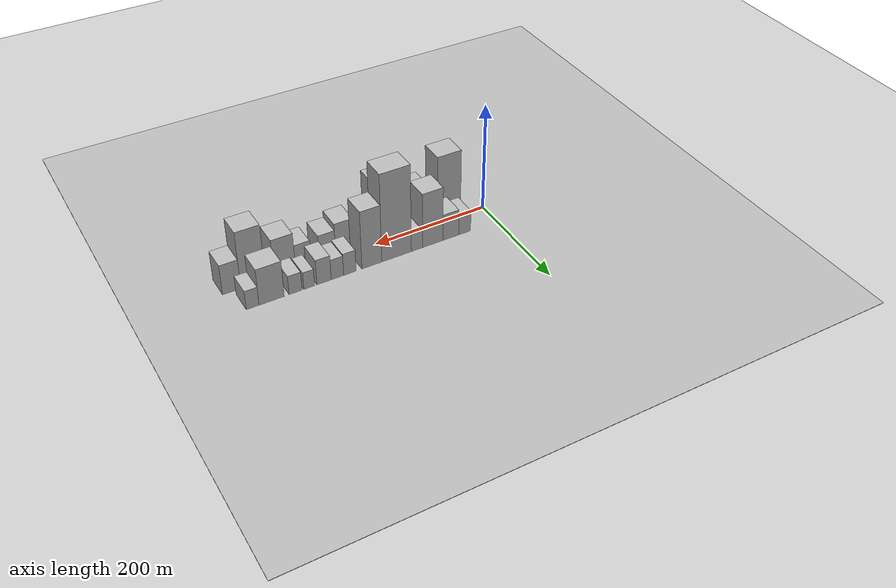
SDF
<?xml version="1.0" encoding="utf-8"?>

<sdf version="1.6">

   <world name="default">

      <gui fullscreen="0">

         <camera name="user_camera">

            <pose>-15 0 4.57585 0 0 0</pose>

            <view_controller>orbit</view_controller>

         </camera>

      </gui>

      <scene>

         <sky>

           <clouds>

             <speed>12</speed>

           </clouds>

         </sky>

         <ambient>0.4 0.4 0.4 1</ambient>

         <background>0.7 0.7 0.7 1</background>

         <shadows>1</shadows>

      </scene>

      <gravity>0 0 -9.8066</gravity>

      <magnetic_field>6e-06 2.3e-05 -4.2e-05</magnetic_field>

      <physics default="0" name="default_physics" type="ode">

         <ode>

            <solver>

               <type>quick</type>

               <iters>10</iters>

               <sor>1.0</sor>

               <use_dynamic_moi_rescaling>0</use_dynamic_moi_rescaling>

            </solver>

            <constraints>

               <cfm>0</cfm>

               <erp>0.2</erp>

               <contact_max_correcting_vel>100</contact_max_correcting_vel>

               <contact_surface_layer>0.001</contact_surface_layer>

            </constraints>

         </ode>

         <max_step_size>0.004</max_step_size>

         <real_time_factor>1</real_time_factor>

         <real_time_update_rate>250</real_time_update_rate>

      </physics>

      <light name="sun" type="directional">

         <cast_shadows>1</cast_shadows>

         <pose>0 0 10 0 0 0</pose>

         <diffuse>0.8 0.8 0.8 1</diffuse>

         <specular>0.2 0.2 0.2 1</specular>

         <attenuation>

            <range>1000</range>

            <constant>0.9</constant>

            <linear>0.01</linear>

            <quadratic>0.001</quadratic>

         </attenuation>

         <direction>-0.5 0.1 -0.9</direction>

      </light>

      <include>

         <name>ground_plane_1</name>

         <uri>model://HANNAS_ground_plane</uri>

         <pose>0 0 0  0 0 0</pose>

      </include>

      <include>

         <name>ground_plane_2</name>

         <uri>model://HANNAS_ground_plane</uri>

         <pose>100 0 0  0 0 0</pose>

      </include>

      <model name="building_1">

         <static>1</static>

         <pose frame="">61.0747 24.5000 0 0.000000 0.000000 1.570796</pose>

         <link name="link">

            <pose frame="">0 0 21.00 0 0 0</pose>

            <collision name="collision">

               <geometry>

                  <box>

                     <size>40.0000 22.1494 42.0000</size>

                  </box>

               </geometry>

               <max_contacts>10</max_contacts>

               <surface>

                  <contact>

                     <ode/>

                  </contact>

                  <bounce/>

                  <friction>

                     <torsional>

                        <ode/>

                     </torsional>

                     <ode/>

                  </friction>

               </surface>

            </collision>

            <visual name="visual">

               <cast_shadows>0</cast_shadows>

               <geometry>

                  <box>

                     <size>40.0000 22.1494 42.0000</size>

                  </box>

               </geometry>

               <material>

                  <script>

                     <uri>model://HANNAS_wall/materials/scripts</uri>

                     <uri>model://HANNAS_wall/materials/textures</uri>

                     <name>vrc/HANNAS_wall</name>

                  </script>

               </material>

            </visual>

            <self_collide>0</self_collide>

            <enable_wind>0</enable_wind>

            <kinematic>0</kinematic>

         </link>

      </model>

      <model name="building_2">

         <static>1</static>

         <pose frame="">86.7216 24.5000 0 0.000000 0.000000 1.570796</pose>

         <link name="link">

            <pose frame="">0 0 25.50 0 0 0</pose>

            <collision name="collision">

               <geometry>

                  <box>

                     <size>40.0000 29.1444 51.0000</size>

                  </box>

               </geometry>

               <max_contacts>10</max_contacts>

               <surface>

                  <contact>

                     <ode/>

                  </contact>

                  <bounce/>

                  <friction>

                     <torsional>

                        <ode/>

                     </torsional>

                     <ode/>

                  </friction>

               </surface>

            </collision>

            <visual name="visual">

               <cast_shadows>0</cast_shadows>

               <geometry>

                  <box>

                     <size>40.0000 29.1444 51.0000</size>

                  </box>

               </geometry>

               <material>

                  <script>

                     <uri>model://HANNAS_wall/materials/scripts</uri>

                     <uri>model://HANNAS_wall/materials/textures</uri>

                     <name>vrc/HANNAS_wall</name>

                  </script>

               </material>

            </visual>

            <self_collide>0</self_collide>

            <enable_wind>0</enable_wind>

            <kinematic>0</kinematic>

         </link>

      </model>

      <model name="building_3">

         <static>1</static>

         <pose frame="">120.1111 24.5000 0 0.000000 0.000000 1.570796</pose>

         <link name="link">

            <pose frame="">0 0 52.50 0 0 0</pose>

            <collision name="collision">

               <geometry>

                  <box>

                     <size>40.0000 37.6346 105.0000</size>

                  </box>

               </geometry>

               <max_contacts>10</max_contacts>

               <surface>

                  <contact>

                     <ode/>

                  </contact>

                  <bounce/>

                  <friction>

                     <torsional>

                        <ode/>

                     </torsional>

                     <ode/>

                  </friction>

               </surface>

            </collision>

            <visual name="visual">

               <cast_shadows>0</cast_shadows>

               <geometry>

                  <box>

                     <size>40.0000 37.6346 105.0000</size>

                  </box>

               </geometry>

               <material>

                  <script>

                     <uri>model://HANNAS_wall/materials/scripts</uri>

                     <uri>model://HANNAS_wall/materials/textures</uri>

                     <name>vrc/HANNAS_wall</name>

                  </script>

               </material>

            </visual>

            <self_collide>0</self_collide>

            <enable_wind>0</enable_wind>

            <kinematic>0</kinematic>

         </link>

      </model>

      <model name="building_4">

         <static>1</static>

         <pose frame="">149.0038 24.5000 0 0.000000 0.000000 1.570796</pose>

         <link name="link">

            <pose frame="">0 0 18.00 0 0 0</pose>

            <collision name="collision">

               <geometry>

                  <box>

                     <size>40.0000 20.1508 36.0000</size>

                  </box>

               </geometry>

               <max_contacts>10</max_contacts>

               <surface>

                  <contact>

                     <ode/>

                  </contact>

                  <bounce/>

                  <friction>

                     <torsional>

                        <ode/>

                     </torsional>

                     <ode/>

                  </friction>

               </surface>

            </collision>

            <visual name="visual">

               <cast_shadows>0</cast_shadows>

               <geometry>

                  <box>

                     <size>40.0000 20.1508 36.0000</size>

                  </box>

               </geometry>

               <material>

                  <script>

                     <uri>model://HANNAS_wall/materials/scripts</uri>

                     <uri>model://HANNAS_wall/materials/textures</uri>

                     <name>vrc/HANNAS_wall</name>

                  </script>

               </material>

            </visual>

            <self_collide>0</self_collide>

            <enable_wind>0</enable_wind>

            <kinematic>0</kinematic>

         </link>

      </model>

      <model name="building_5">

         <static>1</static>

         <pose frame="">185.5101 24.5000 0 0.000000 0.000000 1.570796</pose>

         <link name="link">

            <pose frame="">0 0 84.00 0 0 0</pose>

            <collision name="collision">

               <geometry>

                  <box>

                     <size>40.0000 52.8618 168.0000</size>

                  </box>

               </geometry>

               <max_contacts>10</max_contacts>

               <surface>

                  <contact>

                     <ode/>

                  </contact>

                  <bounce/>

                  <friction>

                     <torsional>

                        <ode/>

                     </torsional>

                     <ode/>

                  </friction>

               </surface>

            </collision>

            <visual name="visual">

               <cast_shadows>0</cast_shadows>

               <geometry>

                  <box>

                     <size>40.0000 52.8618 168.0000</size>

                  </box>

               </geometry>

               <material>

                  <script>

                     <uri>model://HANNAS_wall/materials/scripts</uri>

                     <uri>model://HANNAS_wall/materials/textures</uri>

                     <name>vrc/HANNAS_wall</name>

                  </script>

               </material>

            </visual>

            <self_collide>0</self_collide>

            <enable_wind>0</enable_wind>

            <kinematic>0</kinematic>

         </link>

      </model>

      <model name="building_6">

         <static>1</static>

         <pose frame="">229.3432 24.5000 0 0.000000 0.000000 1.570796</pose>

         <link name="link">

            <pose frame="">0 0 55.50 0 0 0</pose>

            <collision name="collision">

               <geometry>

                  <box>

                     <size>40.0000 34.8044 111.0000</size>

                  </box>

               </geometry>

               <max_contacts>10</max_contacts>

               <surface>

                  <contact>

                     <ode/>

                  </contact>

                  <bounce/>

                  <friction>

                     <torsional>

                        <ode/>

                     </torsional>

                     <ode/>

                  </friction>

               </surface>

            </collision>

            <visual name="visual">

               <cast_shadows>0</cast_shadows>

               <geometry>

                  <box>

                     <size>40.0000 34.8044 111.0000</size>

                  </box>

               </geometry>

               <material>

                  <script>

                     <uri>model://HANNAS_wall/materials/scripts</uri>

                     <uri>model://HANNAS_wall/materials/textures</uri>

                     <name>vrc/HANNAS_wall</name>

                  </script>

               </material>

            </visual>

            <self_collide>0</self_collide>

            <enable_wind>0</enable_wind>

            <kinematic>0</kinematic>

         </link>

      </model>

      <model name="building_7">

         <static>1</static>

         <pose frame="">267.5260 24.5000 0 0.000000 0.000000 1.570796</pose>

         <link name="link">

            <pose frame="">0 0 21.00 0 0 0</pose>

            <collision name="collision">

               <geometry>

                  <box>

                     <size>40.0000 21.5611 42.0000</size>

                  </box>

               </geometry>

               <max_contacts>10</max_contacts>

               <surface>

                  <contact>

                     <ode/>

                  </contact>

                  <bounce/>

                  <friction>

                     <torsional>

                        <ode/>

                     </torsional>

                     <ode/>

                  </friction>

               </surface>

            </collision>

            <visual name="visual">

               <cast_shadows>0</cast_shadows>

               <geometry>

                  <box>

                     <size>40.0000 21.5611 42.0000</size>

                  </box>

               </geometry>

               <material>

                  <script>

                     <uri>model://HANNAS_wall/materials/scripts</uri>

                     <uri>model://HANNAS_wall/materials/textures</uri>

                     <name>vrc/HANNAS_wall</name>

                  </script>

               </material>

            </visual>

            <self_collide>0</self_collide>

            <enable_wind>0</enable_wind>

            <kinematic>0</kinematic>

         </link>

      </model>

      <model name="building_8">

         <static>1</static>

         <pose frame="">288.9002 24.5000 0 0.000000 0.000000 1.570796</pose>

         <link name="link">

            <pose frame="">0 0 19.50 0 0 0</pose>

            <collision name="collision">

               <geometry>

                  <box>

                     <size>40.0000 21.1873 39.0000</size>

                  </box>

               </geometry>

               <max_contacts>10</max_contacts>

               <surface>

                  <contact>

                     <ode/>

                  </contact>

                  <bounce/>

                  <friction>

                     <torsional>

                        <ode/>

                     </torsional>

                     <ode/>

                  </friction>

               </surface>

            </collision>

            <visual name="visual">

               <cast_shadows>0</cast_shadows>

               <geometry>

                  <box>

                     <size>40.0000 21.1873 39.0000</size>

                  </box>

               </geometry>

               <material>

                  <script>

                     <uri>model://HANNAS_wall/materials/scripts</uri>

                     <uri>model://HANNAS_wall/materials/textures</uri>

                     <name>vrc/HANNAS_wall</name>

                  </script>

               </material>

            </visual>

            <self_collide>0</self_collide>

            <enable_wind>0</enable_wind>

            <kinematic>0</kinematic>

         </link>

      </model>

      <model name="building_9">

         <static>1</static>

         <pose frame="">311.6176 24.5000 0 0.000000 0.000000 1.570796</pose>

         <link name="link">

            <pose frame="">0 0 24.00 0 0 0</pose>

            <collision name="collision">

               <geometry>

                  <box>

                     <size>40.0000 24.2476 48.0000</size>

                  </box>

               </geometry>

               <max_contacts>10</max_contacts>

               <surface>

                  <contact>

                     <ode/>

                  </contact>

                  <bounce/>

                  <friction>

                     <torsional>

                        <ode/>

                     </torsional>

                     <ode/>

                  </friction>

               </surface>

            </collision>

            <visual name="visual">

               <cast_shadows>0</cast_shadows>

               <geometry>

                  <box>

                     <size>40.0000 24.2476 48.0000</size>

                  </box>

               </geometry>

               <material>

                  <script>

                     <uri>model://HANNAS_wall/materials/scripts</uri>

                     <uri>model://HANNAS_wall/materials/textures</uri>

                     <name>vrc/HANNAS_wall</name>

                  </script>

               </material>

            </visual>

            <self_collide>0</self_collide>

            <enable_wind>0</enable_wind>

            <kinematic>0</kinematic>

         </link>

      </model>

      <model name="building_10">

         <static>1</static>

         <pose frame="">336.6975 24.5000 0 0.000000 0.000000 1.570796</pose>

         <link name="link">

            <pose frame="">0 0 16.50 0 0 0</pose>

            <collision name="collision">

               <geometry>

                  <box>

                     <size>40.0000 17.9122 33.0000</size>

                  </box>

               </geometry>

               <max_contacts>10</max_contacts>

               <surface>

                  <contact>

                     <ode/>

                  </contact>

                  <bounce/>

                  <friction>

                     <torsional>

                        <ode/>

                     </torsional>

                     <ode/>

                  </friction>

               </surface>

            </collision>

            <visual name="visual">

               <cast_shadows>0</cast_shadows>

               <geometry>

                  <box>

                     <size>40.0000 17.9122 33.0000</size>

                  </box>

               </geometry>

               <material>

                  <script>

                     <uri>model://HANNAS_wall/materials/scripts</uri>

                     <uri>model://HANNAS_wall/materials/textures</uri>

                     <name>vrc/HANNAS_wall</name>

                  </script>

               </material>

            </visual>

            <self_collide>0</self_collide>

            <enable_wind>0</enable_wind>

            <kinematic>0</kinematic>

         </link>

      </model>

      <model name="building_11">

         <static>1</static>

         <pose frame="">359.3681 24.5000 0 0.000000 0.000000 1.570796</pose>

         <link name="link">

            <pose frame="">0 0 18.00 0 0 0</pose>

            <collision name="collision">

               <geometry>

                  <box>

                     <size>40.0000 21.4290 36.0000</size>

                  </box>

               </geometry>

               <max_contacts>10</max_contacts>

               <surface>

                  <contact>

                     <ode/>

                  </contact>

                  <bounce/>

                  <friction>

                     <torsional>

                        <ode/>

                     </torsional>

                     <ode/>

                  </friction>

               </surface>

            </collision>

            <visual name="visual">

               <cast_shadows>0</cast_shadows>

               <geometry>

                  <box>

                     <size>40.0000 21.4290 36.0000</size>

                  </box>

               </geometry>

               <material>

                  <script>

                     <uri>model://HANNAS_wall/materials/scripts</uri>

                     <uri>model://HANNAS_wall/materials/textures</uri>

                     <name>vrc/HANNAS_wall</name>

                  </script>

               </material>

            </visual>

            <self_collide>0</self_collide>

            <enable_wind>0</enable_wind>

            <kinematic>0</kinematic>

         </link>

      </model>

      <model name="building_12">

         <static>1</static>

         <pose frame="">398.5924 24.5000 0 0.000000 0.000000 1.570796</pose>

         <link name="link">

            <pose frame="">0 0 34.50 0 0 0</pose>

            <collision name="collision">

               <geometry>

                  <box>

                     <size>40.0000 41.0194 69.0000</size>

                  </box>

               </geometry>

               <max_contacts>10</max_contacts>

               <surface>

                  <contact>

                     <ode/>

                  </contact>

                  <bounce/>

                  <friction>

                     <torsional>

                        <ode/>

                     </torsional>

                     <ode/>

                  </friction>

               </surface>

            </collision>

            <visual name="visual">

               <cast_shadows>0</cast_shadows>

               <geometry>

                  <box>

                     <size>40.0000 41.0194 69.0000</size>

                  </box>

               </geometry>

               <material>

                  <script>

                     <uri>model://HANNAS_wall/materials/scripts</uri>

                     <uri>model://HANNAS_wall/materials/textures</uri>

                     <name>vrc/HANNAS_wall</name>

                  </script>

               </material>

            </visual>

            <self_collide>0</self_collide>

            <enable_wind>0</enable_wind>

            <kinematic>0</kinematic>

         </link>

      </model>

      <model name="building_13">

         <static>1</static>

         <pose frame="">429.3703 24.5000 0 0.000000 0.000000 1.570796</pose>

         <link name="link">

            <pose frame="">0 0 18.00 0 0 0</pose>

            <collision name="collision">

               <geometry>

                  <box>

                     <size>40.0000 20.5363 36.0000</size>

                  </box>

               </geometry>

               <max_contacts>10</max_contacts>

               <surface>

                  <contact>

                     <ode/>

                  </contact>

                  <bounce/>

                  <friction>

                     <torsional>

                        <ode/>

                     </torsional>

                     <ode/>

                  </friction>

               </surface>

            </collision>

            <visual name="visual">

               <cast_shadows>0</cast_shadows>

               <geometry>

                  <box>

                     <size>40.0000 20.5363 36.0000</size>

                  </box>

               </geometry>

               <material>

                  <script>

                     <uri>model://HANNAS_wall/materials/scripts</uri>

                     <uri>model://HANNAS_wall/materials/textures</uri>

                     <name>vrc/HANNAS_wall</name>

                  </script>

               </material>

            </visual>

            <self_collide>0</self_collide>

            <enable_wind>0</enable_wind>

            <kinematic>0</kinematic>

         </link>

      </model>

      <model name="building_14">

         <static>1</static>

         <pose frame="">61.8601 -24.5000 0 0.000000 0.000000 1.570796</pose>

         <link name="link">

            <pose frame="">0 0 63.00 0 0 0</pose>

            <collision name="collision">

               <geometry>

                  <box>

                     <size>40.0000 43.7202 126.0000</size>

                  </box>

               </geometry>

               <max_contacts>10</max_contacts>

               <surface>

                  <contact>

                     <ode/>

                  </contact>

                  <bounce/>

                  <friction>

                     <torsional>

                        <ode/>

                     </torsional>

                     <ode/>

                  </friction>

               </surface>

            </collision>

            <visual name="visual">

               <cast_shadows>0</cast_shadows>

               <geometry>

                  <box>

                     <size>40.0000 43.7202 126.0000</size>

                  </box>

               </geometry>

               <material>

                  <script>

                     <uri>model://HANNAS_wall/materials/scripts</uri>

                     <uri>model://HANNAS_wall/materials/textures</uri>

                     <name>vrc/HANNAS_wall</name>

                  </script>

               </material>

            </visual>

            <self_collide>0</self_collide>

            <enable_wind>0</enable_wind>

            <kinematic>0</kinematic>

         </link>

      </model>

      <model name="building_15">

         <static>1</static>

         <pose frame="">89.3301 -24.5000 0 0.000000 0.000000 1.570796</pose>

         <link name="link">

            <pose frame="">0 0 13.50 0 0 0</pose>

            <collision name="collision">

               <geometry>

                  <box>

                     <size>40.0000 11.2198 27.0000</size>

                  </box>

               </geometry>

               <max_contacts>10</max_contacts>

               <surface>

                  <contact>

                     <ode/>

                  </contact>

                  <bounce/>

                  <friction>

                     <torsional>

                        <ode/>

                     </torsional>

                     <ode/>

                  </friction>

               </surface>

            </collision>

            <visual name="visual">

               <cast_shadows>0</cast_shadows>

               <geometry>

                  <box>

                     <size>40.0000 11.2198 27.0000</size>

                  </box>

               </geometry>

               <material>

                  <script>

                     <uri>model://HANNAS_wall/materials/scripts</uri>

                     <uri>model://HANNAS_wall/materials/textures</uri>

                     <name>vrc/HANNAS_wall</name>

                  </script>

               </material>

            </visual>

            <self_collide>0</self_collide>

            <enable_wind>0</enable_wind>

            <kinematic>0</kinematic>

         </link>

      </model>

      <model name="building_16">

         <static>1</static>

         <pose frame="">124.6381 -24.5000 0 0.000000 0.000000 1.570796</pose>

         <link name="link">

            <pose frame="">0 0 40.50 0 0 0</pose>

            <collision name="collision">

               <geometry>

                  <box>

                     <size>40.0000 45.3961 81.0000</size>

                  </box>

               </geometry>

               <max_contacts>10</max_contacts>

               <surface>

                  <contact>

                     <ode/>

                  </contact>

                  <bounce/>

                  <friction>

                     <torsional>

                        <ode/>

                     </torsional>

                     <ode/>

                  </friction>

               </surface>

            </collision>

            <visual name="visual">

               <cast_shadows>0</cast_shadows>

               <geometry>

                  <box>

                     <size>40.0000 45.3961 81.0000</size>

                  </box>

               </geometry>

               <material>

                  <script>

                     <uri>model://HANNAS_wall/materials/scripts</uri>

                     <uri>model://HANNAS_wall/materials/textures</uri>

                     <name>vrc/HANNAS_wall</name>

                  </script>

               </material>

            </visual>

            <self_collide>0</self_collide>

            <enable_wind>0</enable_wind>

            <kinematic>0</kinematic>

         </link>

      </model>

      <model name="building_17">

         <static>1</static>

         <pose frame="">178.1045 -24.5000 0 0.000000 0.000000 1.570796</pose>

         <link name="link">

            <pose frame="">0 0 58.50 0 0 0</pose>

            <collision name="collision">

               <geometry>

                  <box>

                     <size>40.0000 43.5367 117.0000</size>

                  </box>

               </geometry>

               <max_contacts>10</max_contacts>

               <surface>

                  <contact>

                     <ode/>

                  </contact>

                  <bounce/>

                  <friction>

                     <torsional>

                        <ode/>

                     </torsional>

                     <ode/>

                  </friction>

               </surface>

            </collision>

            <visual name="visual">

               <cast_shadows>0</cast_shadows>

               <geometry>

                  <box>

                     <size>40.0000 43.5367 117.0000</size>

                  </box>

               </geometry>

               <material>

                  <script>

                     <uri>model://HANNAS_wall/materials/scripts</uri>

                     <uri>model://HANNAS_wall/materials/textures</uri>

                     <name>vrc/HANNAS_wall</name>

                  </script>

               </material>

            </visual>

            <self_collide>0</self_collide>

            <enable_wind>0</enable_wind>

            <kinematic>0</kinematic>

         </link>

      </model>

      <model name="building_18">

         <static>1</static>

         <pose frame="">208.4296 -24.5000 0 0.000000 0.000000 1.570796</pose>

         <link name="link">

            <pose frame="">0 0 15.00 0 0 0</pose>

            <collision name="collision">

               <geometry>

                  <box>

                     <size>40.0000 17.1135 30.0000</size>

                  </box>

               </geometry>

               <max_contacts>10</max_contacts>

               <surface>

                  <contact>

                     <ode/>

                  </contact>

                  <bounce/>

                  <friction>

                     <torsional>

                        <ode/>

                     </torsional>

                     <ode/>

                  </friction>

               </surface>

            </collision>

            <visual name="visual">

               <cast_shadows>0</cast_shadows>

               <geometry>

                  <box>

                     <size>40.0000 17.1135 30.0000</size>

                  </box>

               </geometry>

               <material>

                  <script>

                     <uri>model://HANNAS_wall/materials/scripts</uri>

                     <uri>model://HANNAS_wall/materials/textures</uri>

                     <name>vrc/HANNAS_wall</name>

                  </script>

               </material>

            </visual>

            <self_collide>0</self_collide>

            <enable_wind>0</enable_wind>

            <kinematic>0</kinematic>

         </link>

      </model>

      <model name="building_19">

         <static>1</static>

         <pose frame="">226.3941 -24.5000 0 0.000000 0.000000 1.570796</pose>

         <link name="link">

            <pose frame="">0 0 16.50 0 0 0</pose>

            <collision name="collision">

               <geometry>

                  <box>

                     <size>40.0000 18.8155 33.0000</size>

                  </box>

               </geometry>

               <max_contacts>10</max_contacts>

               <surface>

                  <contact>

                     <ode/>

                  </contact>

                  <bounce/>

                  <friction>

                     <torsional>

                        <ode/>

                     </torsional>

                     <ode/>

                  </friction>

               </surface>

            </collision>

            <visual name="visual">

               <cast_shadows>0</cast_shadows>

               <geometry>

                  <box>

                     <size>40.0000 18.8155 33.0000</size>

                  </box>

               </geometry>

               <material>

                  <script>

                     <uri>model://HANNAS_wall/materials/scripts</uri>

                     <uri>model://HANNAS_wall/materials/textures</uri>

                     <name>vrc/HANNAS_wall</name>

                  </script>

               </material>

            </visual>

            <self_collide>0</self_collide>

            <enable_wind>0</enable_wind>

            <kinematic>0</kinematic>

         </link>

      </model>

      <model name="building_20">

         <static>1</static>

         <pose frame="">251.9429 -24.5000 0 0.000000 0.000000 1.570796</pose>

         <link name="link">

            <pose frame="">0 0 31.50 0 0 0</pose>

            <collision name="collision">

               <geometry>

                  <box>

                     <size>40.0000 32.2822 63.0000</size>

                  </box>

               </geometry>

               <max_contacts>10</max_contacts>

               <surface>

                  <contact>

                     <ode/>

                  </contact>

                  <bounce/>

                  <friction>

                     <torsional>

                        <ode/>

                     </torsional>

                     <ode/>

                  </friction>

               </surface>

            </collision>

            <visual name="visual">

               <cast_shadows>0</cast_shadows>

               <geometry>

                  <box>

                     <size>40.0000 32.2822 63.0000</size>

                  </box>

               </geometry>

               <material>

                  <script>

                     <uri>model://HANNAS_wall/materials/scripts</uri>

                     <uri>model://HANNAS_wall/materials/textures</uri>

                     <name>vrc/HANNAS_wall</name>

                  </script>

               </material>

            </visual>

            <self_collide>0</self_collide>

            <enable_wind>0</enable_wind>

            <kinematic>0</kinematic>

         </link>

      </model>

      <model name="building_21">

         <static>1</static>

         <pose frame="">282.3737 -24.5000 0 0.000000 0.000000 1.570796</pose>

         <link name="link">

            <pose frame="">0 0 25.50 0 0 0</pose>

            <collision name="collision">

               <geometry>

                  <box>

                     <size>40.0000 28.5793 51.0000</size>

                  </box>

               </geometry>

               <max_contacts>10</max_contacts>

               <surface>

                  <contact>

                     <ode/>

                  </contact>

                  <bounce/>

                  <friction>

                     <torsional>

                        <ode/>

                     </torsional>

                     <ode/>

                  </friction>

               </surface>

            </collision>

            <visual name="visual">

               <cast_shadows>0</cast_shadows>

               <geometry>

                  <box>

                     <size>40.0000 28.5793 51.0000</size>

                  </box>

               </geometry>

               <material>

                  <script>

                     <uri>model://HANNAS_wall/materials/scripts</uri>

                     <uri>model://HANNAS_wall/materials/textures</uri>

                     <name>vrc/HANNAS_wall</name>

                  </script>

               </material>

            </visual>

            <self_collide>0</self_collide>

            <enable_wind>0</enable_wind>

            <kinematic>0</kinematic>

         </link>

      </model>

      <model name="building_22">

         <static>1</static>

         <pose frame="">305.6026 -24.5000 0 0.000000 0.000000 1.570796</pose>

         <link name="link">

            <pose frame="">0 0 12.00 0 0 0</pose>

            <collision name="collision">

               <geometry>

                  <box>

                     <size>40.0000 9.8786 24.0000</size>

                  </box>

               </geometry>

               <max_contacts>10</max_contacts>

               <surface>

                  <contact>

                     <ode/>

                  </contact>

                  <bounce/>

                  <friction>

                     <torsional>

                        <ode/>

                     </torsional>

                     <ode/>

                  </friction>

               </surface>

            </collision>

            <visual name="visual">

               <cast_shadows>0</cast_shadows>

               <geometry>

                  <box>

                     <size>40.0000 9.8786 24.0000</size>

                  </box>

               </geometry>

               <material>

                  <script>

                     <uri>model://HANNAS_wall/materials/scripts</uri>

                     <uri>model://HANNAS_wall/materials/textures</uri>

                     <name>vrc/HANNAS_wall</name>

                  </script>

               </material>

            </visual>

            <self_collide>0</self_collide>

            <enable_wind>0</enable_wind>

            <kinematic>0</kinematic>

         </link>

      </model>

      <model name="building_23">

         <static>1</static>

         <pose frame="">323.9527 -24.5000 0 0.000000 0.000000 1.570796</pose>

         <link name="link">

            <pose frame="">0 0 24.00 0 0 0</pose>

            <collision name="collision">

               <geometry>

                  <box>

                     <size>40.0000 26.8215 48.0000</size>

                  </box>

               </geometry>

               <max_contacts>10</max_contacts>

               <surface>

                  <contact>

                     <ode/>

                  </contact>

                  <bounce/>

                  <friction>

                     <torsional>

                        <ode/>

                     </torsional>

                     <ode/>

                  </friction>

               </surface>

            </collision>

            <visual name="visual">

               <cast_shadows>0</cast_shadows>

               <geometry>

                  <box>

                     <size>40.0000 26.8215 48.0000</size>

                  </box>

               </geometry>

               <material>

                  <script>

                     <uri>model://HANNAS_wall/materials/scripts</uri>

                     <uri>model://HANNAS_wall/materials/textures</uri>

                     <name>vrc/HANNAS_wall</name>

                  </script>

               </material>

            </visual>

            <self_collide>0</self_collide>

            <enable_wind>0</enable_wind>

            <kinematic>0</kinematic>

         </link>

      </model>

      <model name="building_24">

         <static>1</static>

         <pose frame="">355.5127 -24.5000 0 0.000000 0.000000 1.570796</pose>

         <link name="link">

            <pose frame="">0 0 36.00 0 0 0</pose>

            <collision name="collision">

               <geometry>

                  <box>

                     <size>40.0000 36.2985 72.0000</size>

                  </box>

               </geometry>

               <max_contacts>10</max_contacts>

               <surface>

                  <contact>

                     <ode/>

                  </contact>

                  <bounce/>

                  <friction>

                     <torsional>

                        <ode/>

                     </torsional>

                     <ode/>

                  </friction>

               </surface>

            </collision>

            <visual name="visual">

               <cast_shadows>0</cast_shadows>

               <geometry>

                  <box>

                     <size>40.0000 36.2985 72.0000</size>

                  </box>

               </geometry>

               <material>

                  <script>

                     <uri>model://HANNAS_wall/materials/scripts</uri>

                     <uri>model://HANNAS_wall/materials/textures</uri>

                     <name>vrc/HANNAS_wall</name>

                  </script>

               </material>

            </visual>

            <self_collide>0</self_collide>

            <enable_wind>0</enable_wind>

            <kinematic>0</kinematic>

         </link>

      </model>

      <model name="building_25">

         <static>1</static>

         <pose frame="">377.3419 -24.5000 0 0.000000 0.000000 1.570796</pose>

         <link name="link">

            <pose frame="">0 0 7.50 0 0 0</pose>

            <collision name="collision">

               <geometry>

                  <box>

                     <size>40.0000 7.3600 15.0000</size>

                  </box>

               </geometry>

               <max_contacts>10</max_contacts>

               <surface>

                  <contact>

                     <ode/>

                  </contact>

                  <bounce/>

                  <friction>

                     <torsional>

                        <ode/>

                     </torsional>

                     <ode/>

                  </friction>

               </surface>

            </collision>

            <visual name="visual">

               <cast_shadows>0</cast_shadows>

               <geometry>

                  <box>

                     <size>40.0000 7.3600 15.0000</size>

                  </box>

               </geometry>

               <material>

                  <script>

                     <uri>model://HANNAS_wall/materials/scripts</uri>

                     <uri>model://HANNAS_wall/materials/textures</uri>

                     <name>vrc/HANNAS_wall</name>

                  </script>

               </material>

            </visual>

            <self_collide>0</self_collide>

            <enable_wind>0</enable_wind>

            <kinematic>0</kinematic>

         </link>

      </model>

      <model name="building_26">

         <static>1</static>

         <pose frame="">408.1288 -24.5000 0 0.000000 0.000000 1.570796</pose>

         <link name="link">

            <pose frame="">0 0 54.00 0 0 0</pose>

            <collision name="collision">

               <geometry>

                  <box>

                     <size>40.0000 40.2138 108.0000</size>

                  </box>

               </geometry>

               <max_contacts>10</max_contacts>

               <surface>

                  <contact>

                     <ode/>

                  </contact>

                  <bounce/>

                  <friction>

                     <torsional>

                        <ode/>

                     </torsional>

                     <ode/>

                  </friction>

               </surface>

            </collision>

            <visual name="visual">

               <cast_shadows>0</cast_shadows>

               <geometry>

                  <box>

                     <size>40.0000 40.2138 108.0000</size>

                  </box>

               </geometry>

               <material>

                  <script>

                     <uri>model://HANNAS_wall/materials/scripts</uri>

                     <uri>model://HANNAS_wall/materials/textures</uri>

                     <name>vrc/HANNAS_wall</name>

                  </script>

               </material>

            </visual>

            <self_collide>0</self_collide>

            <enable_wind>0</enable_wind>

            <kinematic>0</kinematic>

         </link>

      </model>

      <model name="building_27">

         <static>1</static>

         <pose frame="">443.1561 -24.5000 0 0.000000 0.000000 1.570796</pose>

         <link name="link">

            <pose frame="">0 0 28.50 0 0 0</pose>

            <collision name="collision">

               <geometry>

                  <box>

                     <size>40.0000 29.8408 57.0000</size>

                  </box>

               </geometry>

               <max_contacts>10</max_contacts>

               <surface>

                  <contact>

                     <ode/>

                  </contact>

                  <bounce/>

                  <friction>

                     <torsional>

                        <ode/>

                     </torsional>

                     <ode/>

                  </friction>

               </surface>

            </collision>

            <visual name="visual">

               <cast_shadows>0</cast_shadows>

               <geometry>

                  <box>

                     <size>40.0000 29.8408 57.0000</size>

                  </box>

               </geometry>

               <material>

                  <script>

                     <uri>model://HANNAS_wall/materials/scripts</uri>

                     <uri>model://HANNAS_wall/materials/textures</uri>

                     <name>vrc/HANNAS_wall</name>

                  </script>

               </material>

            </visual>

            <self_collide>0</self_collide>

            <enable_wind>0</enable_wind>

            <kinematic>0</kinematic>

         </link>

      </model>

   </world>

</sdf>

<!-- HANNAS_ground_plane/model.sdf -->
<sdf version="1.4">
<model name="HANNAS_ground_plane">
  <static>true</static>
    <link name="link">
      <collision name="collision">
        <geometry>
          <plane>
            <normal>0 0 1</normal>
            <size>1000 1000</size>
          </plane>
        </geometry>
        <surface>
          <friction>
            <ode>
              <mu>100</mu>
              <mu2>50</mu2>
            </ode>
          </friction>
        </surface>
      </collision>
      <visual name="visual">
        <cast_shadows>false</cast_shadows>
        <geometry>
          <plane>
            <normal>0 0 1</normal>
            <size>1000 1000</size>
          </plane>
        </geometry>
        <material>
          <script>
            <uri>model://HANNAS_ground_plane/materials/scripts/HANNAS_ground_plane.material</uri>
	    <uri>model://HANNAS_ground_plane/materials/textures</uri>
            <name>HANNASGroundPlane/Image</name>
          </script>
        </material>
      </visual>
    </link>
  </model>
</sdf>
